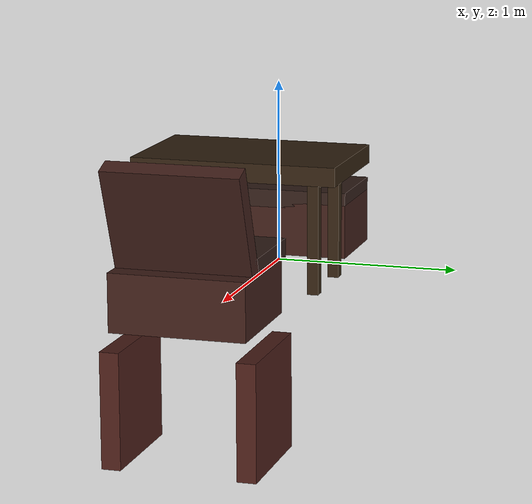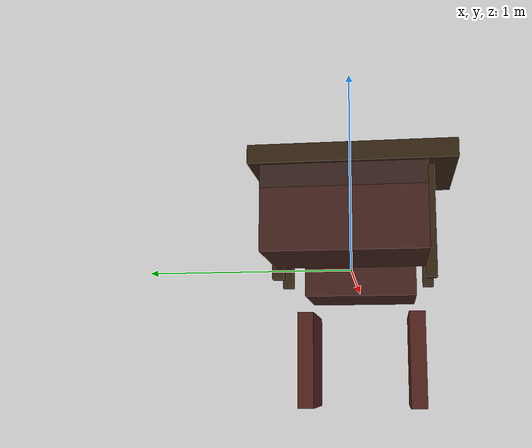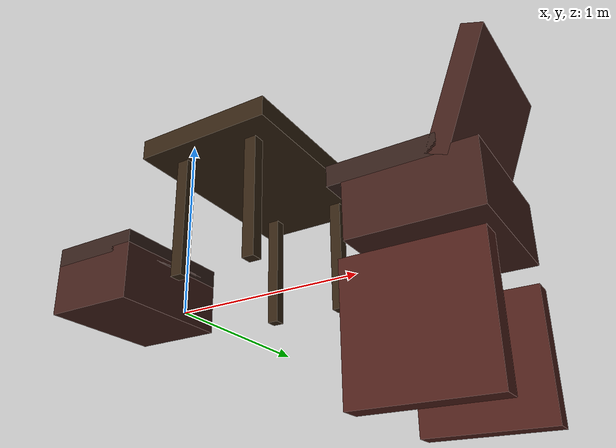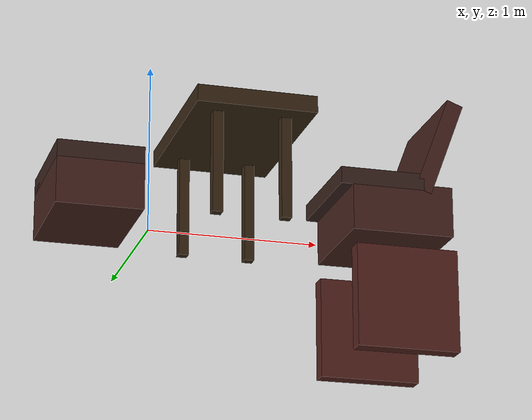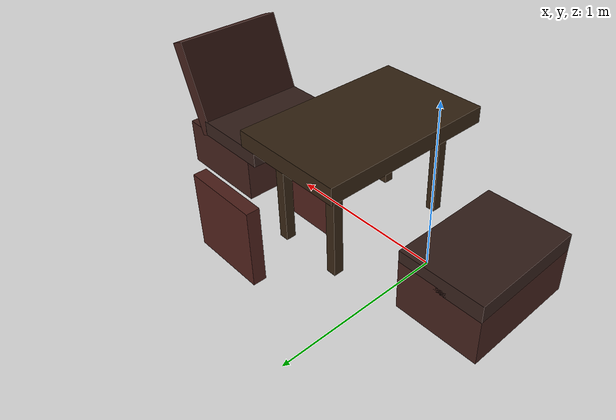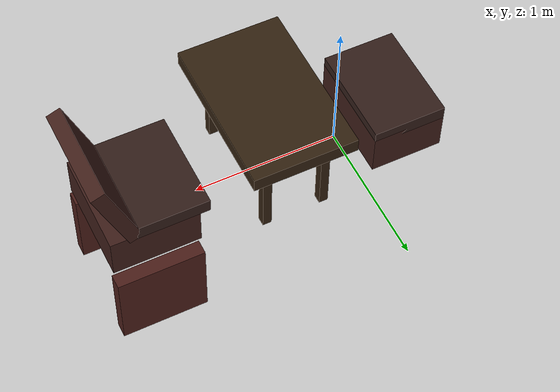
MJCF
<mujoco model="table">
  <worldbody>
    <body name="desk" pos="0.5 0 0.05" quat="0 0 1 0">
      <geom name="top" type="box" pos="0 0 -0.6" size=".35 .55 .05" mass="0.001" material="top"/>
      <body name="leg" pos="0 0 0" quat="1 0 0 0">
        <geom name="table_leg_1" type="box" pos="-0.2 0.4 -0.27" size=".03 0.03 .32" mass="0.001" quat="0 1 0 0" material="leg"/>
        <geom name="table_leg_2" type="box" pos="0.2 -0.4 -0.27" size=".03 0.03 .32" mass="0.001" quat="0 1 0 0" material="leg"/>
        <geom name="table_leg_3" type="box" pos="0.2 0.4 -0.27" size=".03 0.03 .32" mass="0.001" quat="0 1 0 0" material="leg"/>
        <geom name="table_leg_4" type="box" pos="-0.2 -0.4 -0.27" size=".03 0.03 .32" mass="0.001" quat="0 1 0 0" material="leg"/>
      </body>
    </body>
    <body name="chair2" pos="1.3 0 0.2" quat="0 0 0 1">
      <geom name="seat2" type="box" pos="0 0 0.12" size=".25 .35 .05" mass="10." material="seat"/>
      <geom name="seat_base2" type="box" pos="-0.12 0 -0.05" size=".30 .35 .15" mass="10." material="back"/>
      <geom name="back2" type="box" pos="-0.35 0 0.35" size=".05 0.35 .3" mass="10." quat="0.984 0 -0.178 0" material="back"/>
      <geom name="chair_leg_12" type="box" pos="-0.12 0.35 -0.6" size=".3 0.05 .3" mass="5." quat="1 0 0 0" material="legs"/>
      <geom name="chair_leg_22" type="box" pos="-0.12 -0.35 -0.6" size=".3 0.05 .3" mass="5." quat="1 0 0 0" material="legs"/>
    </body>
    <body name="chair1" pos="-0.35 0 0.2" quat="1 0 0 0">
      <geom name="seat1" type="box" pos="0 0 0.12" size=".25 .35 .05" mass="10." material="seat"/>
      <geom name="seat_base1" type="box" pos="0 0 -0.05" size=".25 .35 .15" mass="10." material="back"/>
      <geom name="back1" type="box" pos="-0.35 0 0.35" size=".05 0.35 .3" mass="10." quat="0.984 0 -0.178 0" material="backtrans"/>
      <geom name="chair_leg_11" type="box" pos="-0.12 0.35 -0.1" size=".3 0.05 .3" mass="5." quat="1 0 0 0" material="legstrans"/>
      <geom name="chair_leg_21" type="box" pos="-0.12 -0.35 -0.1" size=".3 0.05 .3" mass="5." quat="1 0 0 0" material="legstrans"/>
    </body>
  </worldbody>

  <asset>
    <material name="top" rgba="0.20000  0.13333  0.06667 1"/>
    <material name="leg" rgba="0.20000  0.13333  0.06667 1"/>
    <texture type="cube" name="wood" file="assets/wood.png"/>
    <material name="wood" texture="wood"/>
    <material name="seat" rgba="0.2  0.12  0.1 1"/>
    <material name="back" rgba="0.25  0.12  0.1 1"/>
    <material name="backtrans" rgba="0.25  0.12  0.1 0"/>
    <material name="legs" rgba="0.3  0.12  0.1 1"/>
    <material name="legstrans" rgba="0.3  0.12  0.1 0"/>
  </asset>
  <keyframe>
    <key name="home"
    qpos="
      -0.37287191198624992
      -0.035799656267370063
      0.901782329396695
      0.99554782129661934
      0.056687379091741694
      -0.053461406362961005
      0.053037294359333076
      0.070185811555352723
      0.289324357645807
      0.044224327308818749
      -0.0761148147271991
      -0.40237919575174297
      -1.8031919617358665
      -1.7515298752693946
      -0.028762932182393394
      -0.021987347952217122
      0.17921942067944588
      0.093576107458969465
      -1.6758152358796854
      -1.4913876604463283
      0.0184475488429449
      -0.0646779532801539
      0.67751925007423042
      -0.82367980528920492
      -0.9484930293433399
      0.85978692033768167
      -0.8869255923345426
      -1.1492215277369582"/>
  </keyframe>

</mujoco>
